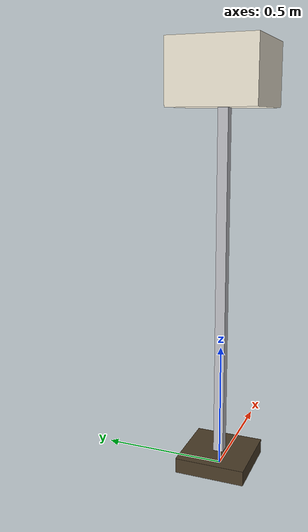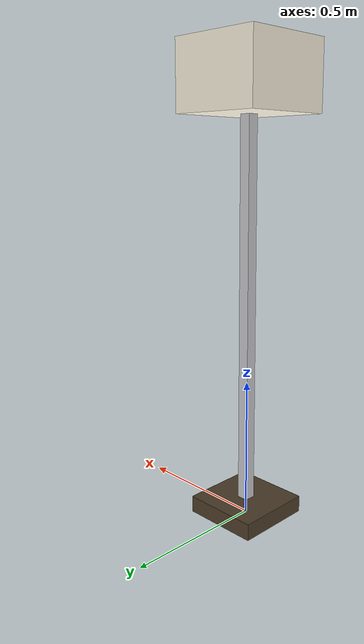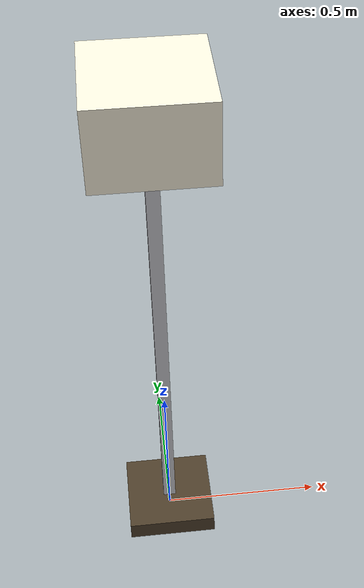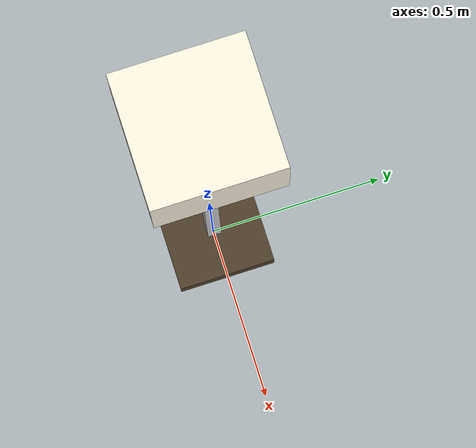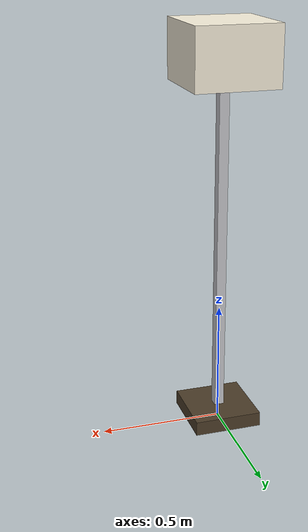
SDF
<?xml version="1.0"?>
<sdf version="1.9">
  <model name="floor_lamp">
    <static>true</static>
    <link name="body">

      <collision name="base_collision">
        <pose>0 0 0.03 0 0 0</pose>
        <geometry><box><size>0.28 0.28 0.06</size></box></geometry>
      </collision>
      <collision name="stem_collision">
        <pose>0 0 0.80 0 0 0</pose>
        <geometry><box><size>0.04 0.04 1.50</size></box></geometry>
      </collision>
      <collision name="shade_collision">
        <pose>0 0 1.55 0 0 0</pose>
        <geometry><box><size>0.34 0.34 0.24</size></box></geometry>
      </collision>
      <visual name="base_visual">
        <pose>0 0 0.03 0 0 0</pose>
        <geometry><box><size>0.28 0.28 0.06</size></box></geometry>
        <material>
          <ambient>0.20 0.16 0.11 1</ambient>
          <diffuse>0.30 0.24 0.16 1</diffuse>
        </material>
      </visual>

      <visual name="stem_visual">
        <pose>0 0 0.80 0 0 0</pose>
        <geometry><box><size>0.04 0.04 1.50</size></box></geometry>
        <material><ambient>0.62 0.62 0.63 1</ambient><diffuse>0.78 0.78 0.80 1</diffuse></material>
      </visual>
      <visual name="shade_visual">
        <pose>0 0 1.55 0 0 0</pose>
        <geometry><box><size>0.34 0.34 0.24</size></box></geometry>
        <material><ambient>0.92 0.89 0.80 1</ambient><diffuse>0.98 0.95 0.87 1</diffuse></material>
      </visual>

    </link>
  </model>
</sdf>
